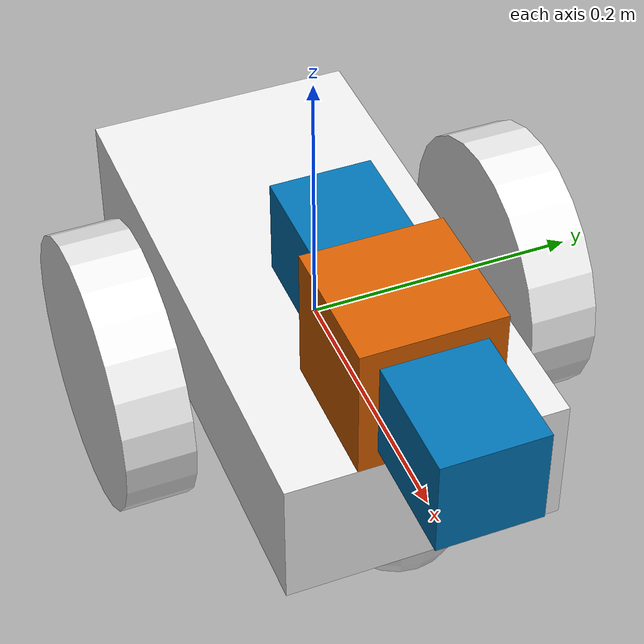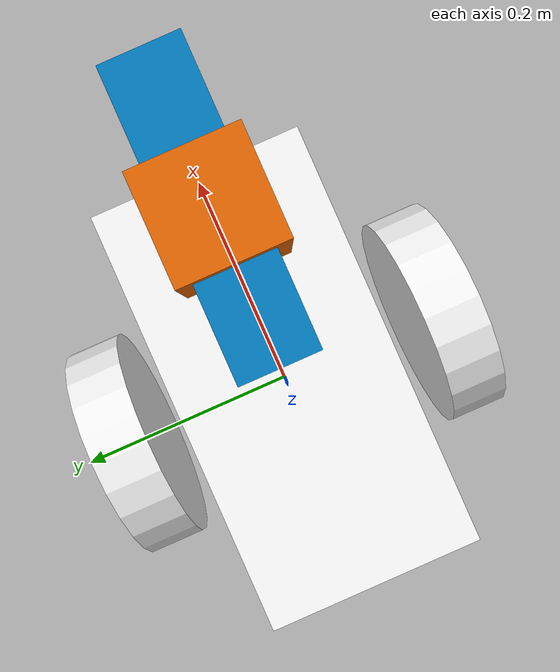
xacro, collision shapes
<?xml version='1.0'?>

<robot name="udacity_bot" xmlns:xacro="http://www.ros.org/wiki/xacro">

  <xacro:include filename="$(find slam_project)/urdf/udacity_bot.gazebo" />
  <xacro:property name="M_PI" value="3.1415926535897931" />

  <link name="robot_footprint"></link>

  <joint name="robot_footprint_joint" type="fixed">
    <origin xyz="0 0 0" rpy="0 0 0" />
    <parent link="robot_footprint"/>
    <child link="chassis" />
  </joint>

  <link name='chassis'>
    <pose>0 0 0.1 0 0 0</pose>

    <inertial>
      <mass value="15.0"/>
      <origin xyz="0.0 0 0" rpy=" 0 0 0"/>
      <inertia
          ixx="0.1" ixy="0" ixz="0"
          iyy="0.1" iyz="0"
          izz="0.1"
      />
    </inertial>

    <collision name='collision'>
      <origin xyz="0 0 0" rpy=" 0 0 0"/>
      <geometry>
        <box size=".4 .2 .1"/>
      </geometry>
    </collision>

    <visual name='chassis_visual'>
      <origin xyz="0 0 0" rpy=" 0 0 0"/>
      <geometry>
        <box size=".4 .2 .1"/>
      </geometry>
    </visual>

    <collision name='back_caster_collision'>
      <origin xyz="-0.15 0 -0.05" rpy=" 0 0 0"/>
      <geometry>
        <sphere radius="0.049"/>
      </geometry>
      <surface>
        <friction>
          <ode>
            <mu>0</mu>
            <mu2>0</mu2>
            <slip1>1.0</slip1>
            <slip2>1.0</slip2>
          </ode>
        </friction>
      </surface>
    </collision>

    <visual name='back_caster_visual'>
      <origin xyz="-0.15 0 -0.05" rpy=" 0 0 0"/>
      <geometry>
        <sphere radius="0.049"/>
      </geometry>
    </visual>

    <collision name='front_caster_collision'>
      <origin xyz="0.15 0 -0.05" rpy=" 0 0 0"/>
      <geometry>
        <sphere radius="0.049"/>
      </geometry>
      <surface>
        <friction>
          <ode>
            <mu>0</mu>
            <mu2>0</mu2>
            <slip1>1.0</slip1>
            <slip2>1.0</slip2>
          </ode>
        </friction>
      </surface>
    </collision>

    <visual name='front_caster_visual'>
      <origin xyz="0.15 0 -0.05" rpy=" 0 0 0"/>
      <geometry>
        <sphere radius="0.049"/>
      </geometry>
    </visual>

  </link>

  <link name='left_wheel'>

    <inertial>
      <mass value="5.0"/>
      <origin xyz="0.0 0 0" rpy=" 0 1.5707 1.5707"/>
      <inertia
          ixx="0.1" ixy="0" ixz="0"
          iyy="0.1" iyz="0"
          izz="0.1"
      />
    </inertial>

    <collision name='left_wheel_collision'>
      <origin xyz="0 0 0" rpy=" 0 1.5707 1.5707"/>
      <geometry>
        <cylinder length="0.05" radius="0.1"/>
      </geometry>
    </collision>

    <visual name='left_wheel_visual'>
      <origin xyz="0 0 0" rpy=" 0 1.5707 1.5707"/>
      <geometry>
        <cylinder length="0.05" radius="0.1"/>
      </geometry>
    </visual>
  </link>

  <link name='right_wheel'>

    <inertial>
      <mass value="5.0"/>
      <origin xyz="0.0 0 0" rpy=" 0 1.5707 1.5707"/>
      <inertia
          ixx="0.1" ixy="0" ixz="0"
          iyy="0.1" iyz="0"
          izz="0.1"
      />
    </inertial>

    <collision name='right_wheel_collision'>
      <origin xyz="0 0 0" rpy=" 0 1.5707 1.5707"/>
      <geometry>
        <cylinder length="0.05" radius="0.1"/>
      </geometry>
    </collision>

    <visual name='right_wheel_visual'>
      <origin xyz="0 0 0" rpy=" 0 1.5707 1.5707"/>
      <geometry>
        <cylinder length="0.05" radius="0.1"/>
      </geometry>
    </visual>
  </link>

  <link name='camera'>

    <inertial>
      <mass value="0.1"/>
      <origin xyz="0 0 0" rpy=" 0 0 0"/>
      <inertia
          ixx="1e-6" ixy="0" ixz="0"
          iyy="1e-6" iyz="0"
          izz="1e-6"
      />
    </inertial>

    <collision name='camera_collision'>
      <origin xyz="0 0 0" rpy="0 0 1.5707"/>
      <geometry>
        <box size="0.0730 .2760 0.0720"/>
      </geometry>
    </collision>

    <visual name='camera_visual'>
      <origin xyz="0 0 -0.02" rpy="0 0 1.5707"/>
      <geometry>
        <mesh filename="package://slam_project/meshes/kinetic.dae"/>
      </geometry>
    </visual>
  </link>

  <link name='hokuyo'>

    <inertial>
      <mass value="0.1"/>
      <origin xyz="0 0 0" rpy=" 0 0 0"/>
      <inertia
          ixx="1e-6" ixy="0" ixz="0"
          iyy="1e-6" iyz="0"
          izz="1e-6"
      />
    </inertial>

    <collision name='hokuyo_collision'>
      <origin xyz="0 0 0" rpy=" 0 0 0"/>
      <geometry>
        <box size="0.1 0.1 0.1"/>
      </geometry>
    </collision>

    <visual name='hokuyo_visual'>
      <origin xyz="0 0 0" rpy=" 0 0 0"/>
      <geometry>
        <mesh filename="package://slam_project/meshes/hokuyo.dae"/>
      </geometry>
    </visual>
  </link>

  <joint type="continuous" name="left_wheel_hinge">
    <origin xyz="0 0.15 0" rpy="0 0 0"/>
    <child link="left_wheel"/>
    <parent link="chassis"/>
    <axis xyz="0 1 0" rpy="0 0 0"/>
    <limit effort="10000" velocity="1000"/>
    <joint_properties damping="1.0" friction="1.0"/>
  </joint>

  <joint type="continuous" name="right_wheel_hinge">
    <origin xyz="0 -0.15 0" rpy="0 0 0"/>
    <child link="right_wheel"/>
    <parent link="chassis"/>
    <axis xyz="0 1 0" rpy="0 0 0"/>
    <limit effort="10000" velocity="1000"/>
    <joint_properties damping="1.0" friction="1.0"/>
  </joint>

  <joint type="fixed" name="camera_joint">
    <origin xyz="0.15 0 0.1" rpy="0 0 0"/>
    <child link="camera"/>
    <parent link="chassis"/>
    <limit effort="10000" velocity="1000"/>
    <joint_properties damping="1.0" friction="1.0"/>
  </joint>

  <joint type="fixed" name="hokuyo_joint">
    <origin xyz="0.15 0 0.1" rpy="0 0 0"/>
    <child link="hokuyo"/>
    <parent link="chassis"/>
    <limit effort="10000" velocity="1000"/>
    <joint_properties damping="1.0" friction="1.0"/>
  </joint>

  <joint name="camera_depth_joint" type="fixed">
    <origin xyz="0 0.011 0" rpy="0 0 0" />
    <parent link="camera" />
    <child link="camera_depth_frame" />
  </joint>

  <link name="camera_depth_frame">
    <inertial>
      <mass value="0.01" />
      <origin xyz="0 0 0" />
      <inertia ixx="0.001" ixy="0.0" ixz="0.0"
        iyy="0.001" iyz="0.0"
        izz="0.001" />
    </inertial>
  </link>

  <joint name="camera_depth_optical_joint" type="fixed">
    <origin xyz="0 0 0" rpy="${-M_PI/2} 0 ${-M_PI/2}" />
    <parent link="camera_depth_frame" />
    <child link="camera_depth_optical_frame" />
  </joint>

  <link name="camera_depth_optical_frame">
    <inertial>
      <mass value="0.001" />
      <origin xyz="0 0 0" />
      <inertia ixx="0.0001" ixy="0.0" ixz="0.0"
        iyy="0.0001" iyz="0.0"
        izz="0.0001" />
    </inertial>
  </link>

  <joint name="camera_rgb_joint" type="fixed">
    <origin xyz="0 -0.012 0" rpy="0 0 0" />
    <parent link="camera" />
    <child link="camera_rgb_frame" />
  </joint>

  <link name="camera_rgb_frame">
    <inertial>
      <mass value="0.001" />
      <origin xyz="0 0 0" />
      <inertia ixx="0.0001" ixy="0.0" ixz="0.0"
        iyy="0.0001" iyz="0.0"
        izz="0.0001" />
    </inertial>
  </link>

  <joint name="camera_rgb_optical_joint" type="fixed">
    <origin xyz="0 0 0" rpy="${-M_PI/2} 0 ${-M_PI/2}" />
    <parent link="camera_rgb_frame" />
    <child link="camera_rgb_optical_frame" />
  </joint>

  <link name="camera_rgb_optical_frame">
    <inertial>
      <mass value="0.001" />
      <origin xyz="0 0 0" />
      <inertia ixx="0.0001" ixy="0.0" ixz="0.0"
        iyy="0.0001" iyz="0.0"
        izz="0.0001" />
    </inertial>
  </link>

</robot>
